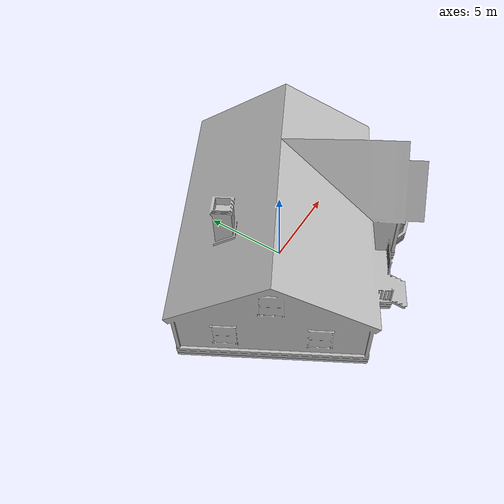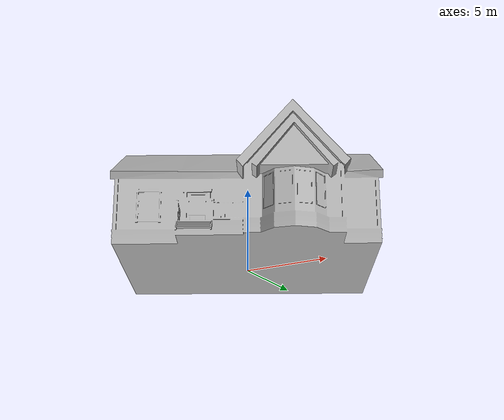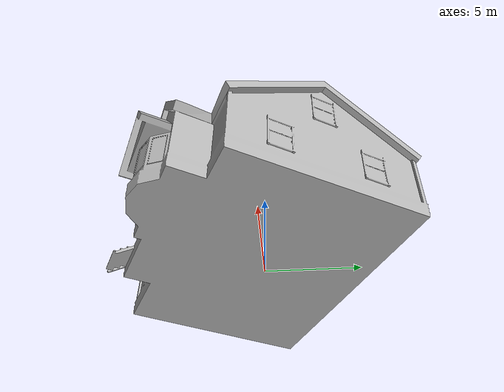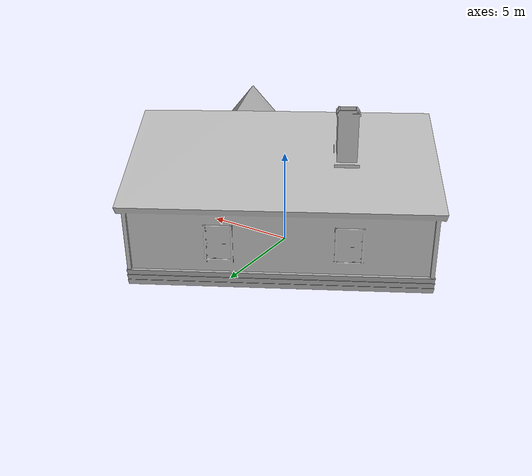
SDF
<?xml version="1.0" ?>
<sdf version="1.5">
  <model name="house">
      <static>true</static>
      <pose>0 0 0 0 0 0.5</pose>
      <link name="body">

        <visual name="visual">
          <geometry>
            <mesh>
              <uri>model://house/meshes/house.dae</uri>
            </mesh>
          </geometry>
        </visual>

        <!-- hitbox -->
        <collision name="collision">
            <geometry>
                <mesh>
                    <uri>model://house/meshes/house.dae</uri>
                </mesh>
            </geometry>
        </collision>

      </link>
    </model>
</sdf>
